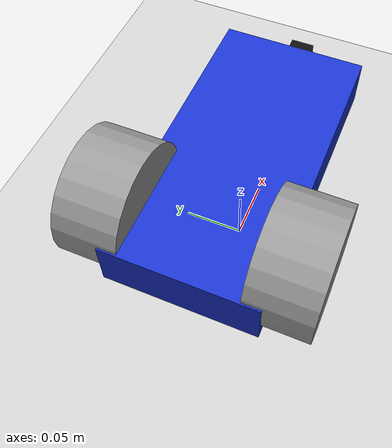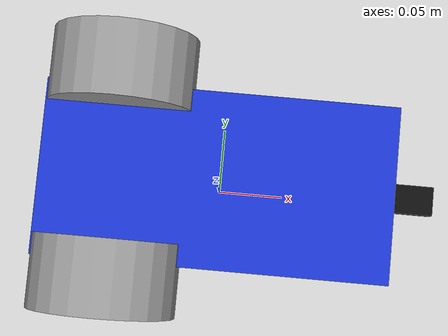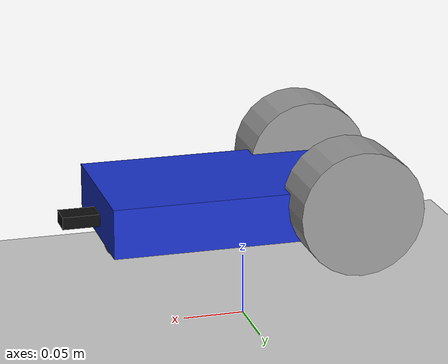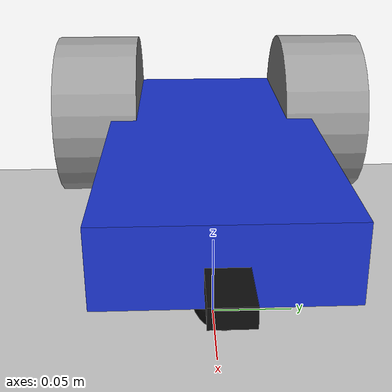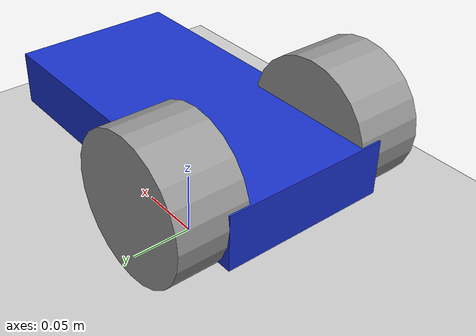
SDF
<?xml version="1.0" ?>
<sdf version="1.9">
  <world name="plane_world">

    <gravity>0 0 -9.81</gravity>

    <include>
      <uri>https://fuel.gazebosim.org/1.0/OpenRobotics/models/Ground%20Plane</uri>
    </include>
    <include>
      <uri>https://fuel.gazebosim.org/1.0/OpenRobotics/models/Sun</uri>
    </include>

    <gui fullscreen="false">
      <camera name="user_camera">
        <pose>0 -1.0 0.6 0.6 0 0</pose>
      </camera>
    </gui>

   <include>
  <uri>model://my_robot</uri>
  <name>my_robot</name>
  <pose>0 0 0.08 0 0 0</pose>
</include>

  </world>
</sdf>

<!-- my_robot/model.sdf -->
<sdf version="1.9">
  <model name="my_robot">
    <pose>0 0 0.05 0 0 0</pose>

    <link name="base_link">
      <inertial>
        <mass>1.2</mass>
        <inertia>
          <ixx>0.01</ixx><ixy>0</ixy><ixz>0</ixz>
          <iyy>0.02</iyy><iyz>0</iyz>
          <izz>0.03</izz>
        </inertia>
      </inertial>

      <collision name="chassis_collision">
        <pose>0 0 0.02 0 0 0</pose>
        <geometry><box><size>0.24 0.12 0.04</size></box></geometry>
      </collision>

      <visual name="chassis_visual">
        <pose>0 0 0.02 0 0 0</pose>
        <geometry><box><size>0.24 0.12 0.04</size></box></geometry>
        <material>
          <ambient>0.1 0.2 0.8 1</ambient>
          <diffuse>0.1 0.2 0.8 1</diffuse>
        </material>
      </visual>

      <visual name="sensor_bar_visual">
        <pose>0.10 0 0.015 0 0 0</pose>
        <geometry><box><size>0.10 0.02 0.01</size></box></geometry>
        <material>
          <ambient>0.05 0.05 0.05 1</ambient>
          <diffuse>0.05 0.05 0.05 1</diffuse>
        </material>
      </visual>
    </link>

    <link name="left_wheel_link">
  <pose>-0.07 0.07 0.03 0 0 0</pose>
  <inertial>
    <mass>0.15</mass>
    <inertia>
      <ixx>0.0002</ixx><ixy>0</ixy><ixz>0</ixz>
      <iyy>0.0002</iyy><iyz>0</iyz>
      <izz>0.0002</izz>
    </inertia>
  </inertial>

  <collision name="left_wheel_collision">
    <pose>0 0 0 1.57079632679 0 0</pose>
    <geometry><cylinder><radius>0.05</radius><length>0.05</length></cylinder></geometry>
      <surface>
    <friction>
      <ode>
        <mu>2.0</mu>
        <mu2>2.0</mu2>
      </ode>
    </friction>
  </surface>
  </collision>

  <visual name="left_wheel_visual">
    <pose>0 0 0 1.57079632679 0 0</pose>
    <geometry><cylinder><radius>0.05</radius><length>0.05</length></cylinder></geometry>
    <material>
      <ambient>0.6 0.6 0.6 1</ambient>
      <diffuse>0.6 0.6 0.6 1</diffuse>
    </material>
  </visual>
</link>

<joint name="left_wheel_joint" type="revolute">
  <parent>base_link</parent>
  <child>left_wheel_link</child>
  <axis>
    <xyz>0 1 0</xyz>
    <limit>
      <lower>-1e16</lower>
      <upper>1e16</upper>
      <effort>5</effort>
      <velocity>50</velocity>
    </limit>
    <dynamics>
      <damping>0.1</damping>
      <friction>0.0</friction>
    </dynamics>
  </axis>
</joint>

<link name="right_wheel_link">
  <pose>-0.07 -0.07 0.03 0 0 0</pose>
  <inertial>
    <mass>0.15</mass>
    <inertia>
      <ixx>0.0002</ixx><ixy>0</ixy><ixz>0</ixz>
      <iyy>0.0002</iyy><iyz>0</iyz>
      <izz>0.0002</izz>
    </inertia>
  </inertial>

  <collision name="right_wheel_collision">
    <pose>0 0 0 1.57079632679 0 0</pose>
    <geometry><cylinder><radius>0.05</radius><length>0.05</length></cylinder></geometry>
    <surface>
      <friction>
        <ode>
          <mu>2.0</mu>
          <mu2>2.0</mu2>
        </ode>
      </friction>
    </surface>
  </collision>

  <visual name="right_wheel_visual">
    <pose>0 0 0 1.57079632679 0 0</pose>
    <geometry><cylinder><radius>0.05</radius><length>0.05</length></cylinder></geometry>
    <material>
      <ambient>0.6 0.6 0.6 1</ambient>
      <diffuse>0.6 0.6 0.6 1</diffuse>
    </material>
  </visual>
</link>

<joint name="right_wheel_joint" type="revolute">
  <parent>base_link</parent>
  <child>right_wheel_link</child>
   <axis>
    <xyz>0 1 0</xyz>
    <limit>
      <lower>-1e16</lower>
      <upper>1e16</upper>
      <effort>5</effort>
      <velocity>50</velocity>
    </limit>
    <dynamics>
      <damping>0.1</damping>
      <friction>0.0</friction>
    </dynamics>
  </axis>
</joint>

    <link name="caster_link">
      <pose>0.10 0 -0.0070 0 0 0</pose>
      <inertial>
        <mass>0.05</mass>
        <inertia>
          <ixx>0.00002</ixx><ixy>0</ixy><ixz>0</ixz>
          <iyy>0.00002</iyy><iyz>0</iyz>
          <izz>0.00002</izz>
        </inertia>
      </inertial>

      <collision name="caster_collision">
        <geometry><sphere><radius>0.015</radius></sphere></geometry>
        <surface>
          <friction>
            <ode>
              <mu>0.6</mu>
              <mu2>0.6</mu2>
            </ode>
          </friction>
        </surface>
      </collision>

      <visual name="caster_visual">
        <geometry><sphere><radius>0.015</radius></sphere></geometry>
        <material>
          <ambient>0.05 0.05 0.05 1</ambient>
          <diffuse>0.05 0.05 0.05 1</diffuse>
        </material>
      </visual>
    </link>

    <joint name="caster_joint" type="ball">
      <parent>base_link</parent>
      <child>caster_link</child>
    </joint>

    <plugin
        filename="libignition-gazebo-diff-drive-system.so"
        name="ignition::gazebo::systems::DiffDrive">
      <left_joint>left_wheel_joint</left_joint>
      <right_joint>right_wheel_joint</right_joint>
      <wheel_separation>0.14</wheel_separation>
      <wheel_radius>0.05</wheel_radius>
      <odom_publish_frequency>50</odom_publish_frequency>
      <topic>/cmd_vel</topic>
    </plugin>

  </model>
</sdf>
